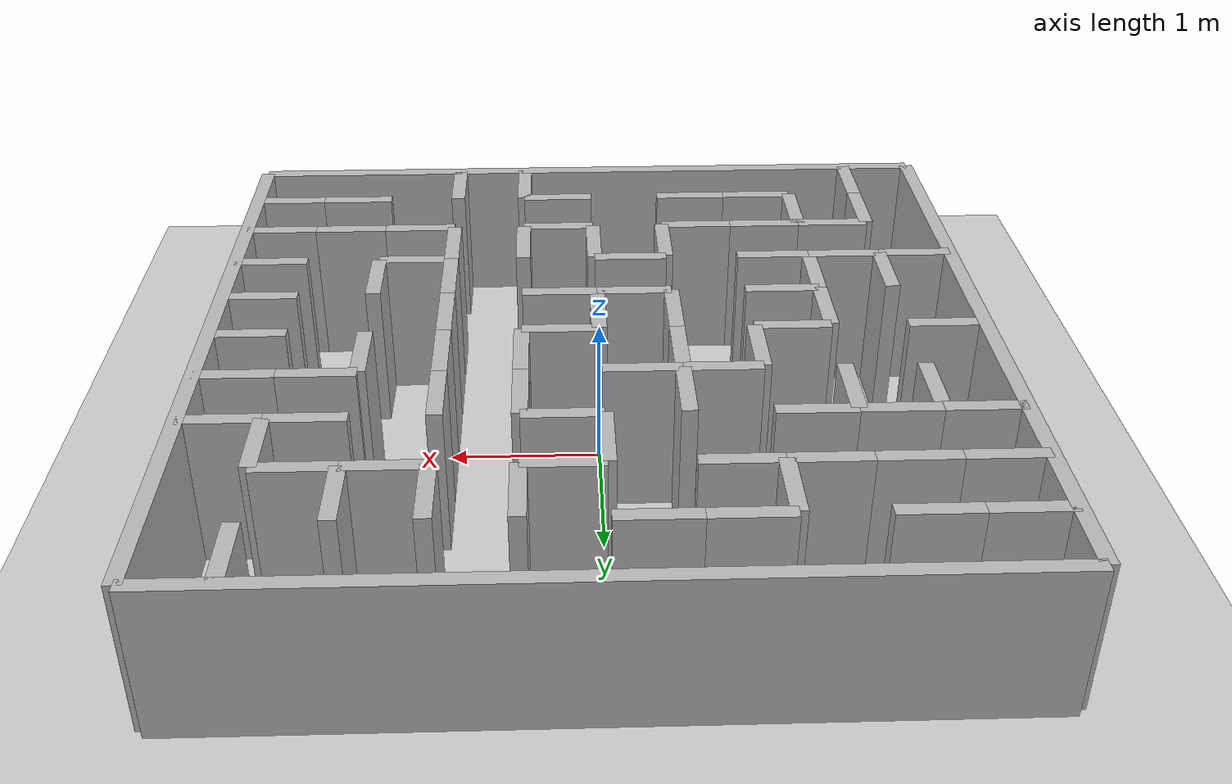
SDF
<?xml version="1.0" ?>
<sdf version="1.6">
  <world name="prim_maze_world">

    <!-- Plugins -->
    <plugin filename="gz-sim-physics-system" name="gz::sim::systems::Physics"/>
    <plugin filename="gz-sim-user-commands-system" name="gz::sim::systems::UserCommands"/>
    <plugin filename="gz-sim-scene-broadcaster-system" name="gz::sim::systems::SceneBroadcaster"/>
    <plugin filename="gz-sim-sensors-system" name="gz::sim::systems::Sensors">
      <render_engine>ogre2</render_engine>
    </plugin>
    <plugin filename="gz-sim-imu-system" name="gz::sim::systems::Imu"/>

    <!-- Basic Environment (Fuel URIs) -->
    <include>
      <uri>https://fuel.gazebosim.org/1.0/OpenRobotics/models/Ground Plane</uri>
    </include>
    <include>
      <uri>https://fuel.gazebosim.org/1.0/OpenRobotics/models/Sun</uri>
    </include>

    <!-- Maze Walls -->

    <model name="wall_-2.00_-2.25">
      <static>true</static>
      <link name="link">
        <collision name="collision">
          <geometry>
            <box>
              <size>0.5 0.1 1.0</size>
            </box>
          </geometry>
        </collision>
        <visual name="visual">
          <geometry>
            <box>
              <size>0.5 0.1 1.0</size>
            </box>
          </geometry>
        </visual>
      </link>
      <pose>-2.000 -2.250 0.5 0 0 1.5708</pose>
    </model>

    <model name="wall_0.50_-2.25">
      <static>true</static>
      <link name="link">
        <collision name="collision">
          <geometry>
            <box>
              <size>0.5 0.1 1.0</size>
            </box>
          </geometry>
        </collision>
        <visual name="visual">
          <geometry>
            <box>
              <size>0.5 0.1 1.0</size>
            </box>
          </geometry>
        </visual>
      </link>
      <pose>0.500 -2.250 0.5 0 0 1.5708</pose>
    </model>

    <model name="wall_1.00_-2.25">
      <static>true</static>
      <link name="link">
        <collision name="collision">
          <geometry>
            <box>
              <size>0.5 0.1 1.0</size>
            </box>
          </geometry>
        </collision>
        <visual name="visual">
          <geometry>
            <box>
              <size>0.5 0.1 1.0</size>
            </box>
          </geometry>
        </visual>
      </link>
      <pose>1.000 -2.250 0.5 0 0 1.5708</pose>
    </model>

    <model name="wall_-2.00_-1.75">
      <static>true</static>
      <link name="link">
        <collision name="collision">
          <geometry>
            <box>
              <size>0.5 0.1 1.0</size>
            </box>
          </geometry>
        </collision>
        <visual name="visual">
          <geometry>
            <box>
              <size>0.5 0.1 1.0</size>
            </box>
          </geometry>
        </visual>
      </link>
      <pose>-2.000 -1.750 0.5 0 0 1.5708</pose>
    </model>

    <model name="wall_-1.50_-1.75">
      <static>true</static>
      <link name="link">
        <collision name="collision">
          <geometry>
            <box>
              <size>0.5 0.1 1.0</size>
            </box>
          </geometry>
        </collision>
        <visual name="visual">
          <geometry>
            <box>
              <size>0.5 0.1 1.0</size>
            </box>
          </geometry>
        </visual>
      </link>
      <pose>-1.500 -1.750 0.5 0 0 1.5708</pose>
    </model>

    <model name="wall_-0.50_-1.25">
      <static>true</static>
      <link name="link">
        <collision name="collision">
          <geometry>
            <box>
              <size>0.5 0.1 1.0</size>
            </box>
          </geometry>
        </collision>
        <visual name="visual">
          <geometry>
            <box>
              <size>0.5 0.1 1.0</size>
            </box>
          </geometry>
        </visual>
      </link>
      <pose>-0.500 -1.250 0.5 0 0 1.5708</pose>
    </model>

    <model name="wall_0.00_-1.25">
      <static>true</static>
      <link name="link">
        <collision name="collision">
          <geometry>
            <box>
              <size>0.5 0.1 1.0</size>
            </box>
          </geometry>
        </collision>
        <visual name="visual">
          <geometry>
            <box>
              <size>0.5 0.1 1.0</size>
            </box>
          </geometry>
        </visual>
      </link>
      <pose>0.000 -1.250 0.5 0 0 1.5708</pose>
    </model>

    <model name="wall_0.50_-1.25">
      <static>true</static>
      <link name="link">
        <collision name="collision">
          <geometry>
            <box>
              <size>0.5 0.1 1.0</size>
            </box>
          </geometry>
        </collision>
        <visual name="visual">
          <geometry>
            <box>
              <size>0.5 0.1 1.0</size>
            </box>
          </geometry>
        </visual>
      </link>
      <pose>0.500 -1.250 0.5 0 0 1.5708</pose>
    </model>

    <model name="wall_1.00_-1.25">
      <static>true</static>
      <link name="link">
        <collision name="collision">
          <geometry>
            <box>
              <size>0.5 0.1 1.0</size>
            </box>
          </geometry>
        </collision>
        <visual name="visual">
          <geometry>
            <box>
              <size>0.5 0.1 1.0</size>
            </box>
          </geometry>
        </visual>
      </link>
      <pose>1.000 -1.250 0.5 0 0 1.5708</pose>
    </model>

    <model name="wall_-2.00_-0.75">
      <static>true</static>
      <link name="link">
        <collision name="collision">
          <geometry>
            <box>
              <size>0.5 0.1 1.0</size>
            </box>
          </geometry>
        </collision>
        <visual name="visual">
          <geometry>
            <box>
              <size>0.5 0.1 1.0</size>
            </box>
          </geometry>
        </visual>
      </link>
      <pose>-2.000 -0.750 0.5 0 0 1.5708</pose>
    </model>

    <model name="wall_-1.50_-0.75">
      <static>true</static>
      <link name="link">
        <collision name="collision">
          <geometry>
            <box>
              <size>0.5 0.1 1.0</size>
            </box>
          </geometry>
        </collision>
        <visual name="visual">
          <geometry>
            <box>
              <size>0.5 0.1 1.0</size>
            </box>
          </geometry>
        </visual>
      </link>
      <pose>-1.500 -0.750 0.5 0 0 1.5708</pose>
    </model>

    <model name="wall_1.00_-0.75">
      <static>true</static>
      <link name="link">
        <collision name="collision">
          <geometry>
            <box>
              <size>0.5 0.1 1.0</size>
            </box>
          </geometry>
        </collision>
        <visual name="visual">
          <geometry>
            <box>
              <size>0.5 0.1 1.0</size>
            </box>
          </geometry>
        </visual>
      </link>
      <pose>1.000 -0.750 0.5 0 0 1.5708</pose>
    </model>

    <model name="wall_1.50_-0.75">
      <static>true</static>
      <link name="link">
        <collision name="collision">
          <geometry>
            <box>
              <size>0.5 0.1 1.0</size>
            </box>
          </geometry>
        </collision>
        <visual name="visual">
          <geometry>
            <box>
              <size>0.5 0.1 1.0</size>
            </box>
          </geometry>
        </visual>
      </link>
      <pose>1.500 -0.750 0.5 0 0 1.5708</pose>
    </model>

    <model name="wall_-1.50_-0.25">
      <static>true</static>
      <link name="link">
        <collision name="collision">
          <geometry>
            <box>
              <size>0.5 0.1 1.0</size>
            </box>
          </geometry>
        </collision>
        <visual name="visual">
          <geometry>
            <box>
              <size>0.5 0.1 1.0</size>
            </box>
          </geometry>
        </visual>
      </link>
      <pose>-1.500 -0.250 0.5 0 0 1.5708</pose>
    </model>

    <model name="wall_-0.50_-0.25">
      <static>true</static>
      <link name="link">
        <collision name="collision">
          <geometry>
            <box>
              <size>0.5 0.1 1.0</size>
            </box>
          </geometry>
        </collision>
        <visual name="visual">
          <geometry>
            <box>
              <size>0.5 0.1 1.0</size>
            </box>
          </geometry>
        </visual>
      </link>
      <pose>-0.500 -0.250 0.5 0 0 1.5708</pose>
    </model>

    <model name="wall_0.00_-0.25">
      <static>true</static>
      <link name="link">
        <collision name="collision">
          <geometry>
            <box>
              <size>0.5 0.1 1.0</size>
            </box>
          </geometry>
        </collision>
        <visual name="visual">
          <geometry>
            <box>
              <size>0.5 0.1 1.0</size>
            </box>
          </geometry>
        </visual>
      </link>
      <pose>0.000 -0.250 0.5 0 0 1.5708</pose>
    </model>

    <model name="wall_1.00_-0.25">
      <static>true</static>
      <link name="link">
        <collision name="collision">
          <geometry>
            <box>
              <size>0.5 0.1 1.0</size>
            </box>
          </geometry>
        </collision>
        <visual name="visual">
          <geometry>
            <box>
              <size>0.5 0.1 1.0</size>
            </box>
          </geometry>
        </visual>
      </link>
      <pose>1.000 -0.250 0.5 0 0 1.5708</pose>
    </model>

    <model name="wall_-1.00_0.25">
      <static>true</static>
      <link name="link">
        <collision name="collision">
          <geometry>
            <box>
              <size>0.5 0.1 1.0</size>
            </box>
          </geometry>
        </collision>
        <visual name="visual">
          <geometry>
            <box>
              <size>0.5 0.1 1.0</size>
            </box>
          </geometry>
        </visual>
      </link>
      <pose>-1.000 0.250 0.5 0 0 1.5708</pose>
    </model>

    <model name="wall_-0.50_0.25">
      <static>true</static>
      <link name="link">
        <collision name="collision">
          <geometry>
            <box>
              <size>0.5 0.1 1.0</size>
            </box>
          </geometry>
        </collision>
        <visual name="visual">
          <geometry>
            <box>
              <size>0.5 0.1 1.0</size>
            </box>
          </geometry>
        </visual>
      </link>
      <pose>-0.500 0.250 0.5 0 0 1.5708</pose>
    </model>

    <model name="wall_0.50_0.25">
      <static>true</static>
      <link name="link">
        <collision name="collision">
          <geometry>
            <box>
              <size>0.5 0.1 1.0</size>
            </box>
          </geometry>
        </collision>
        <visual name="visual">
          <geometry>
            <box>
              <size>0.5 0.1 1.0</size>
            </box>
          </geometry>
        </visual>
      </link>
      <pose>0.500 0.250 0.5 0 0 1.5708</pose>
    </model>

    <model name="wall_1.00_0.25">
      <static>true</static>
      <link name="link">
        <collision name="collision">
          <geometry>
            <box>
              <size>0.5 0.1 1.0</size>
            </box>
          </geometry>
        </collision>
        <visual name="visual">
          <geometry>
            <box>
              <size>0.5 0.1 1.0</size>
            </box>
          </geometry>
        </visual>
      </link>
      <pose>1.000 0.250 0.5 0 0 1.5708</pose>
    </model>

    <model name="wall_1.50_0.25">
      <static>true</static>
      <link name="link">
        <collision name="collision">
          <geometry>
            <box>
              <size>0.5 0.1 1.0</size>
            </box>
          </geometry>
        </collision>
        <visual name="visual">
          <geometry>
            <box>
              <size>0.5 0.1 1.0</size>
            </box>
          </geometry>
        </visual>
      </link>
      <pose>1.500 0.250 0.5 0 0 1.5708</pose>
    </model>

    <model name="wall_-2.00_0.75">
      <static>true</static>
      <link name="link">
        <collision name="collision">
          <geometry>
            <box>
              <size>0.5 0.1 1.0</size>
            </box>
          </geometry>
        </collision>
        <visual name="visual">
          <geometry>
            <box>
              <size>0.5 0.1 1.0</size>
            </box>
          </geometry>
        </visual>
      </link>
      <pose>-2.000 0.750 0.5 0 0 1.5708</pose>
    </model>

    <model name="wall_-1.50_0.75">
      <static>true</static>
      <link name="link">
        <collision name="collision">
          <geometry>
            <box>
              <size>0.5 0.1 1.0</size>
            </box>
          </geometry>
        </collision>
        <visual name="visual">
          <geometry>
            <box>
              <size>0.5 0.1 1.0</size>
            </box>
          </geometry>
        </visual>
      </link>
      <pose>-1.500 0.750 0.5 0 0 1.5708</pose>
    </model>

    <model name="wall_-0.50_0.75">
      <static>true</static>
      <link name="link">
        <collision name="collision">
          <geometry>
            <box>
              <size>0.5 0.1 1.0</size>
            </box>
          </geometry>
        </collision>
        <visual name="visual">
          <geometry>
            <box>
              <size>0.5 0.1 1.0</size>
            </box>
          </geometry>
        </visual>
      </link>
      <pose>-0.500 0.750 0.5 0 0 1.5708</pose>
    </model>

    <model name="wall_0.50_0.75">
      <static>true</static>
      <link name="link">
        <collision name="collision">
          <geometry>
            <box>
              <size>0.5 0.1 1.0</size>
            </box>
          </geometry>
        </collision>
        <visual name="visual">
          <geometry>
            <box>
              <size>0.5 0.1 1.0</size>
            </box>
          </geometry>
        </visual>
      </link>
      <pose>0.500 0.750 0.5 0 0 1.5708</pose>
    </model>

    <model name="wall_1.00_0.75">
      <static>true</static>
      <link name="link">
        <collision name="collision">
          <geometry>
            <box>
              <size>0.5 0.1 1.0</size>
            </box>
          </geometry>
        </collision>
        <visual name="visual">
          <geometry>
            <box>
              <size>0.5 0.1 1.0</size>
            </box>
          </geometry>
        </visual>
      </link>
      <pose>1.000 0.750 0.5 0 0 1.5708</pose>
    </model>

    <model name="wall_0.00_1.25">
      <static>true</static>
      <link name="link">
        <collision name="collision">
          <geometry>
            <box>
              <size>0.5 0.1 1.0</size>
            </box>
          </geometry>
        </collision>
        <visual name="visual">
          <geometry>
            <box>
              <size>0.5 0.1 1.0</size>
            </box>
          </geometry>
        </visual>
      </link>
      <pose>0.000 1.250 0.5 0 0 1.5708</pose>
    </model>

    <model name="wall_2.00_1.25">
      <static>true</static>
      <link name="link">
        <collision name="collision">
          <geometry>
            <box>
              <size>0.5 0.1 1.0</size>
            </box>
          </geometry>
        </collision>
        <visual name="visual">
          <geometry>
            <box>
              <size>0.5 0.1 1.0</size>
            </box>
          </geometry>
        </visual>
      </link>
      <pose>2.000 1.250 0.5 0 0 1.5708</pose>
    </model>

    <model name="wall_-1.00_1.75">
      <static>true</static>
      <link name="link">
        <collision name="collision">
          <geometry>
            <box>
              <size>0.5 0.1 1.0</size>
            </box>
          </geometry>
        </collision>
        <visual name="visual">
          <geometry>
            <box>
              <size>0.5 0.1 1.0</size>
            </box>
          </geometry>
        </visual>
      </link>
      <pose>-1.000 1.750 0.5 0 0 1.5708</pose>
    </model>

    <model name="wall_0.50_1.75">
      <static>true</static>
      <link name="link">
        <collision name="collision">
          <geometry>
            <box>
              <size>0.5 0.1 1.0</size>
            </box>
          </geometry>
        </collision>
        <visual name="visual">
          <geometry>
            <box>
              <size>0.5 0.1 1.0</size>
            </box>
          </geometry>
        </visual>
      </link>
      <pose>0.500 1.750 0.5 0 0 1.5708</pose>
    </model>

    <model name="wall_1.00_1.75">
      <static>true</static>
      <link name="link">
        <collision name="collision">
          <geometry>
            <box>
              <size>0.5 0.1 1.0</size>
            </box>
          </geometry>
        </collision>
        <visual name="visual">
          <geometry>
            <box>
              <size>0.5 0.1 1.0</size>
            </box>
          </geometry>
        </visual>
      </link>
      <pose>1.000 1.750 0.5 0 0 1.5708</pose>
    </model>

    <model name="wall_1.50_1.75">
      <static>true</static>
      <link name="link">
        <collision name="collision">
          <geometry>
            <box>
              <size>0.5 0.1 1.0</size>
            </box>
          </geometry>
        </collision>
        <visual name="visual">
          <geometry>
            <box>
              <size>0.5 0.1 1.0</size>
            </box>
          </geometry>
        </visual>
      </link>
      <pose>1.500 1.750 0.5 0 0 1.5708</pose>
    </model>

    <model name="wall_2.00_2.25">
      <static>true</static>
      <link name="link">
        <collision name="collision">
          <geometry>
            <box>
              <size>0.5 0.1 1.0</size>
            </box>
          </geometry>
        </collision>
        <visual name="visual">
          <geometry>
            <box>
              <size>0.5 0.1 1.0</size>
            </box>
          </geometry>
        </visual>
      </link>
      <pose>2.000 2.250 0.5 0 0 1.5708</pose>
    </model>

    <model name="wall_-1.25_-2.00">
      <static>true</static>
      <link name="link">
        <collision name="collision">
          <geometry>
            <box>
              <size>0.5 0.1 1.0</size>
            </box>
          </geometry>
        </collision>
        <visual name="visual">
          <geometry>
            <box>
              <size>0.5 0.1 1.0</size>
            </box>
          </geometry>
        </visual>
      </link>
      <pose>-1.250 -2.000 0.5 0 0 0</pose>
    </model>

    <model name="wall_-0.75_-2.00">
      <static>true</static>
      <link name="link">
        <collision name="collision">
          <geometry>
            <box>
              <size>0.5 0.1 1.0</size>
            </box>
          </geometry>
        </collision>
        <visual name="visual">
          <geometry>
            <box>
              <size>0.5 0.1 1.0</size>
            </box>
          </geometry>
        </visual>
      </link>
      <pose>-0.750 -2.000 0.5 0 0 0</pose>
    </model>

    <model name="wall_0.25_-2.00">
      <static>true</static>
      <link name="link">
        <collision name="collision">
          <geometry>
            <box>
              <size>0.5 0.1 1.0</size>
            </box>
          </geometry>
        </collision>
        <visual name="visual">
          <geometry>
            <box>
              <size>0.5 0.1 1.0</size>
            </box>
          </geometry>
        </visual>
      </link>
      <pose>0.250 -2.000 0.5 0 0 0</pose>
    </model>

    <model name="wall_1.75_-2.00">
      <static>true</static>
      <link name="link">
        <collision name="collision">
          <geometry>
            <box>
              <size>0.5 0.1 1.0</size>
            </box>
          </geometry>
        </collision>
        <visual name="visual">
          <geometry>
            <box>
              <size>0.5 0.1 1.0</size>
            </box>
          </geometry>
        </visual>
      </link>
      <pose>1.750 -2.000 0.5 0 0 0</pose>
    </model>

    <model name="wall_2.25_-2.00">
      <static>true</static>
      <link name="link">
        <collision name="collision">
          <geometry>
            <box>
              <size>0.5 0.1 1.0</size>
            </box>
          </geometry>
        </collision>
        <visual name="visual">
          <geometry>
            <box>
              <size>0.5 0.1 1.0</size>
            </box>
          </geometry>
        </visual>
      </link>
      <pose>2.250 -2.000 0.5 0 0 0</pose>
    </model>

    <model name="wall_-1.75_-1.50">
      <static>true</static>
      <link name="link">
        <collision name="collision">
          <geometry>
            <box>
              <size>0.5 0.1 1.0</size>
            </box>
          </geometry>
        </collision>
        <visual name="visual">
          <geometry>
            <box>
              <size>0.5 0.1 1.0</size>
            </box>
          </geometry>
        </visual>
      </link>
      <pose>-1.750 -1.500 0.5 0 0 0</pose>
    </model>

    <model name="wall_-1.25_-1.50">
      <static>true</static>
      <link name="link">
        <collision name="collision">
          <geometry>
            <box>
              <size>0.5 0.1 1.0</size>
            </box>
          </geometry>
        </collision>
        <visual name="visual">
          <geometry>
            <box>
              <size>0.5 0.1 1.0</size>
            </box>
          </geometry>
        </visual>
      </link>
      <pose>-1.250 -1.500 0.5 0 0 0</pose>
    </model>

    <model name="wall_-0.75_-1.50">
      <static>true</static>
      <link name="link">
        <collision name="collision">
          <geometry>
            <box>
              <size>0.5 0.1 1.0</size>
            </box>
          </geometry>
        </collision>
        <visual name="visual">
          <geometry>
            <box>
              <size>0.5 0.1 1.0</size>
            </box>
          </geometry>
        </visual>
      </link>
      <pose>-0.750 -1.500 0.5 0 0 0</pose>
    </model>

    <model name="wall_0.25_-1.50">
      <static>true</static>
      <link name="link">
        <collision name="collision">
          <geometry>
            <box>
              <size>0.5 0.1 1.0</size>
            </box>
          </geometry>
        </collision>
        <visual name="visual">
          <geometry>
            <box>
              <size>0.5 0.1 1.0</size>
            </box>
          </geometry>
        </visual>
      </link>
      <pose>0.250 -1.500 0.5 0 0 0</pose>
    </model>

    <model name="wall_1.25_-1.50">
      <static>true</static>
      <link name="link">
        <collision name="collision">
          <geometry>
            <box>
              <size>0.5 0.1 1.0</size>
            </box>
          </geometry>
        </collision>
        <visual name="visual">
          <geometry>
            <box>
              <size>0.5 0.1 1.0</size>
            </box>
          </geometry>
        </visual>
      </link>
      <pose>1.250 -1.500 0.5 0 0 0</pose>
    </model>

    <model name="wall_1.75_-1.50">
      <static>true</static>
      <link name="link">
        <collision name="collision">
          <geometry>
            <box>
              <size>0.5 0.1 1.0</size>
            </box>
          </geometry>
        </collision>
        <visual name="visual">
          <geometry>
            <box>
              <size>0.5 0.1 1.0</size>
            </box>
          </geometry>
        </visual>
      </link>
      <pose>1.750 -1.500 0.5 0 0 0</pose>
    </model>

    <model name="wall_2.25_-1.50">
      <static>true</static>
      <link name="link">
        <collision name="collision">
          <geometry>
            <box>
              <size>0.5 0.1 1.0</size>
            </box>
          </geometry>
        </collision>
        <visual name="visual">
          <geometry>
            <box>
              <size>0.5 0.1 1.0</size>
            </box>
          </geometry>
        </visual>
      </link>
      <pose>2.250 -1.500 0.5 0 0 0</pose>
    </model>

    <model name="wall_-2.25_-1.00">
      <static>true</static>
      <link name="link">
        <collision name="collision">
          <geometry>
            <box>
              <size>0.5 0.1 1.0</size>
            </box>
          </geometry>
        </collision>
        <visual name="visual">
          <geometry>
            <box>
              <size>0.5 0.1 1.0</size>
            </box>
          </geometry>
        </visual>
      </link>
      <pose>-2.250 -1.000 0.5 0 0 0</pose>
    </model>

    <model name="wall_-1.75_-1.00">
      <static>true</static>
      <link name="link">
        <collision name="collision">
          <geometry>
            <box>
              <size>0.5 0.1 1.0</size>
            </box>
          </geometry>
        </collision>
        <visual name="visual">
          <geometry>
            <box>
              <size>0.5 0.1 1.0</size>
            </box>
          </geometry>
        </visual>
      </link>
      <pose>-1.750 -1.000 0.5 0 0 0</pose>
    </model>

    <model name="wall_-1.25_-1.00">
      <static>true</static>
      <link name="link">
        <collision name="collision">
          <geometry>
            <box>
              <size>0.5 0.1 1.0</size>
            </box>
          </geometry>
        </collision>
        <visual name="visual">
          <geometry>
            <box>
              <size>0.5 0.1 1.0</size>
            </box>
          </geometry>
        </visual>
      </link>
      <pose>-1.250 -1.000 0.5 0 0 0</pose>
    </model>

    <model name="wall_-0.25_-1.00">
      <static>true</static>
      <link name="link">
        <collision name="collision">
          <geometry>
            <box>
              <size>0.5 0.1 1.0</size>
            </box>
          </geometry>
        </collision>
        <visual name="visual">
          <geometry>
            <box>
              <size>0.5 0.1 1.0</size>
            </box>
          </geometry>
        </visual>
      </link>
      <pose>-0.250 -1.000 0.5 0 0 0</pose>
    </model>

    <model name="wall_1.25_-1.00">
      <static>true</static>
      <link name="link">
        <collision name="collision">
          <geometry>
            <box>
              <size>0.5 0.1 1.0</size>
            </box>
          </geometry>
        </collision>
        <visual name="visual">
          <geometry>
            <box>
              <size>0.5 0.1 1.0</size>
            </box>
          </geometry>
        </visual>
      </link>
      <pose>1.250 -1.000 0.5 0 0 0</pose>
    </model>

    <model name="wall_2.25_-1.00">
      <static>true</static>
      <link name="link">
        <collision name="collision">
          <geometry>
            <box>
              <size>0.5 0.1 1.0</size>
            </box>
          </geometry>
        </collision>
        <visual name="visual">
          <geometry>
            <box>
              <size>0.5 0.1 1.0</size>
            </box>
          </geometry>
        </visual>
      </link>
      <pose>2.250 -1.000 0.5 0 0 0</pose>
    </model>

    <model name="wall_-1.25_-0.50">
      <static>true</static>
      <link name="link">
        <collision name="collision">
          <geometry>
            <box>
              <size>0.5 0.1 1.0</size>
            </box>
          </geometry>
        </collision>
        <visual name="visual">
          <geometry>
            <box>
              <size>0.5 0.1 1.0</size>
            </box>
          </geometry>
        </visual>
      </link>
      <pose>-1.250 -0.500 0.5 0 0 0</pose>
    </model>

    <model name="wall_-0.25_-0.50">
      <static>true</static>
      <link name="link">
        <collision name="collision">
          <geometry>
            <box>
              <size>0.5 0.1 1.0</size>
            </box>
          </geometry>
        </collision>
        <visual name="visual">
          <geometry>
            <box>
              <size>0.5 0.1 1.0</size>
            </box>
          </geometry>
        </visual>
      </link>
      <pose>-0.250 -0.500 0.5 0 0 0</pose>
    </model>

    <model name="wall_0.25_-0.50">
      <static>true</static>
      <link name="link">
        <collision name="collision">
          <geometry>
            <box>
              <size>0.5 0.1 1.0</size>
            </box>
          </geometry>
        </collision>
        <visual name="visual">
          <geometry>
            <box>
              <size>0.5 0.1 1.0</size>
            </box>
          </geometry>
        </visual>
      </link>
      <pose>0.250 -0.500 0.5 0 0 0</pose>
    </model>

    <model name="wall_2.25_-0.50">
      <static>true</static>
      <link name="link">
        <collision name="collision">
          <geometry>
            <box>
              <size>0.5 0.1 1.0</size>
            </box>
          </geometry>
        </collision>
        <visual name="visual">
          <geometry>
            <box>
              <size>0.5 0.1 1.0</size>
            </box>
          </geometry>
        </visual>
      </link>
      <pose>2.250 -0.500 0.5 0 0 0</pose>
    </model>

    <model name="wall_-2.25_0.00">
      <static>true</static>
      <link name="link">
        <collision name="collision">
          <geometry>
            <box>
              <size>0.5 0.1 1.0</size>
            </box>
          </geometry>
        </collision>
        <visual name="visual">
          <geometry>
            <box>
              <size>0.5 0.1 1.0</size>
            </box>
          </geometry>
        </visual>
      </link>
      <pose>-2.250 0.000 0.5 0 0 0</pose>
    </model>

    <model name="wall_-1.25_0.00">
      <static>true</static>
      <link name="link">
        <collision name="collision">
          <geometry>
            <box>
              <size>0.5 0.1 1.0</size>
            </box>
          </geometry>
        </collision>
        <visual name="visual">
          <geometry>
            <box>
              <size>0.5 0.1 1.0</size>
            </box>
          </geometry>
        </visual>
      </link>
      <pose>-1.250 0.000 0.5 0 0 0</pose>
    </model>

    <model name="wall_0.25_0.00">
      <static>true</static>
      <link name="link">
        <collision name="collision">
          <geometry>
            <box>
              <size>0.5 0.1 1.0</size>
            </box>
          </geometry>
        </collision>
        <visual name="visual">
          <geometry>
            <box>
              <size>0.5 0.1 1.0</size>
            </box>
          </geometry>
        </visual>
      </link>
      <pose>0.250 0.000 0.5 0 0 0</pose>
    </model>

    <model name="wall_2.25_0.00">
      <static>true</static>
      <link name="link">
        <collision name="collision">
          <geometry>
            <box>
              <size>0.5 0.1 1.0</size>
            </box>
          </geometry>
        </collision>
        <visual name="visual">
          <geometry>
            <box>
              <size>0.5 0.1 1.0</size>
            </box>
          </geometry>
        </visual>
      </link>
      <pose>2.250 0.000 0.5 0 0 0</pose>
    </model>

    <model name="wall_-0.75_0.50">
      <static>true</static>
      <link name="link">
        <collision name="collision">
          <geometry>
            <box>
              <size>0.5 0.1 1.0</size>
            </box>
          </geometry>
        </collision>
        <visual name="visual">
          <geometry>
            <box>
              <size>0.5 0.1 1.0</size>
            </box>
          </geometry>
        </visual>
      </link>
      <pose>-0.750 0.500 0.5 0 0 0</pose>
    </model>

    <model name="wall_-0.25_0.50">
      <static>true</static>
      <link name="link">
        <collision name="collision">
          <geometry>
            <box>
              <size>0.5 0.1 1.0</size>
            </box>
          </geometry>
        </collision>
        <visual name="visual">
          <geometry>
            <box>
              <size>0.5 0.1 1.0</size>
            </box>
          </geometry>
        </visual>
      </link>
      <pose>-0.250 0.500 0.5 0 0 0</pose>
    </model>

    <model name="wall_1.75_0.50">
      <static>true</static>
      <link name="link">
        <collision name="collision">
          <geometry>
            <box>
              <size>0.5 0.1 1.0</size>
            </box>
          </geometry>
        </collision>
        <visual name="visual">
          <geometry>
            <box>
              <size>0.5 0.1 1.0</size>
            </box>
          </geometry>
        </visual>
      </link>
      <pose>1.750 0.500 0.5 0 0 0</pose>
    </model>

    <model name="wall_2.25_0.50">
      <static>true</static>
      <link name="link">
        <collision name="collision">
          <geometry>
            <box>
              <size>0.5 0.1 1.0</size>
            </box>
          </geometry>
        </collision>
        <visual name="visual">
          <geometry>
            <box>
              <size>0.5 0.1 1.0</size>
            </box>
          </geometry>
        </visual>
      </link>
      <pose>2.250 0.500 0.5 0 0 0</pose>
    </model>

    <model name="wall_-2.25_1.00">
      <static>true</static>
      <link name="link">
        <collision name="collision">
          <geometry>
            <box>
              <size>0.5 0.1 1.0</size>
            </box>
          </geometry>
        </collision>
        <visual name="visual">
          <geometry>
            <box>
              <size>0.5 0.1 1.0</size>
            </box>
          </geometry>
        </visual>
      </link>
      <pose>-2.250 1.000 0.5 0 0 0</pose>
    </model>

    <model name="wall_-1.75_1.00">
      <static>true</static>
      <link name="link">
        <collision name="collision">
          <geometry>
            <box>
              <size>0.5 0.1 1.0</size>
            </box>
          </geometry>
        </collision>
        <visual name="visual">
          <geometry>
            <box>
              <size>0.5 0.1 1.0</size>
            </box>
          </geometry>
        </visual>
      </link>
      <pose>-1.750 1.000 0.5 0 0 0</pose>
    </model>

    <model name="wall_-1.25_1.00">
      <static>true</static>
      <link name="link">
        <collision name="collision">
          <geometry>
            <box>
              <size>0.5 0.1 1.0</size>
            </box>
          </geometry>
        </collision>
        <visual name="visual">
          <geometry>
            <box>
              <size>0.5 0.1 1.0</size>
            </box>
          </geometry>
        </visual>
      </link>
      <pose>-1.250 1.000 0.5 0 0 0</pose>
    </model>

    <model name="wall_0.25_1.00">
      <static>true</static>
      <link name="link">
        <collision name="collision">
          <geometry>
            <box>
              <size>0.5 0.1 1.0</size>
            </box>
          </geometry>
        </collision>
        <visual name="visual">
          <geometry>
            <box>
              <size>0.5 0.1 1.0</size>
            </box>
          </geometry>
        </visual>
      </link>
      <pose>0.250 1.000 0.5 0 0 0</pose>
    </model>

    <model name="wall_1.75_1.00">
      <static>true</static>
      <link name="link">
        <collision name="collision">
          <geometry>
            <box>
              <size>0.5 0.1 1.0</size>
            </box>
          </geometry>
        </collision>
        <visual name="visual">
          <geometry>
            <box>
              <size>0.5 0.1 1.0</size>
            </box>
          </geometry>
        </visual>
      </link>
      <pose>1.750 1.000 0.5 0 0 0</pose>
    </model>

    <model name="wall_2.25_1.00">
      <static>true</static>
      <link name="link">
        <collision name="collision">
          <geometry>
            <box>
              <size>0.5 0.1 1.0</size>
            </box>
          </geometry>
        </collision>
        <visual name="visual">
          <geometry>
            <box>
              <size>0.5 0.1 1.0</size>
            </box>
          </geometry>
        </visual>
      </link>
      <pose>2.250 1.000 0.5 0 0 0</pose>
    </model>

    <model name="wall_-2.25_1.50">
      <static>true</static>
      <link name="link">
        <collision name="collision">
          <geometry>
            <box>
              <size>0.5 0.1 1.0</size>
            </box>
          </geometry>
        </collision>
        <visual name="visual">
          <geometry>
            <box>
              <size>0.5 0.1 1.0</size>
            </box>
          </geometry>
        </visual>
      </link>
      <pose>-2.250 1.500 0.5 0 0 0</pose>
    </model>

    <model name="wall_-1.75_1.50">
      <static>true</static>
      <link name="link">
        <collision name="collision">
          <geometry>
            <box>
              <size>0.5 0.1 1.0</size>
            </box>
          </geometry>
        </collision>
        <visual name="visual">
          <geometry>
            <box>
              <size>0.5 0.1 1.0</size>
            </box>
          </geometry>
        </visual>
      </link>
      <pose>-1.750 1.500 0.5 0 0 0</pose>
    </model>

    <model name="wall_-1.25_1.50">
      <static>true</static>
      <link name="link">
        <collision name="collision">
          <geometry>
            <box>
              <size>0.5 0.1 1.0</size>
            </box>
          </geometry>
        </collision>
        <visual name="visual">
          <geometry>
            <box>
              <size>0.5 0.1 1.0</size>
            </box>
          </geometry>
        </visual>
      </link>
      <pose>-1.250 1.500 0.5 0 0 0</pose>
    </model>

    <model name="wall_-0.75_1.50">
      <static>true</static>
      <link name="link">
        <collision name="collision">
          <geometry>
            <box>
              <size>0.5 0.1 1.0</size>
            </box>
          </geometry>
        </collision>
        <visual name="visual">
          <geometry>
            <box>
              <size>0.5 0.1 1.0</size>
            </box>
          </geometry>
        </visual>
      </link>
      <pose>-0.750 1.500 0.5 0 0 0</pose>
    </model>

    <model name="wall_0.25_1.50">
      <static>true</static>
      <link name="link">
        <collision name="collision">
          <geometry>
            <box>
              <size>0.5 0.1 1.0</size>
            </box>
          </geometry>
        </collision>
        <visual name="visual">
          <geometry>
            <box>
              <size>0.5 0.1 1.0</size>
            </box>
          </geometry>
        </visual>
      </link>
      <pose>0.250 1.500 0.5 0 0 0</pose>
    </model>

    <model name="wall_1.25_1.50">
      <static>true</static>
      <link name="link">
        <collision name="collision">
          <geometry>
            <box>
              <size>0.5 0.1 1.0</size>
            </box>
          </geometry>
        </collision>
        <visual name="visual">
          <geometry>
            <box>
              <size>0.5 0.1 1.0</size>
            </box>
          </geometry>
        </visual>
      </link>
      <pose>1.250 1.500 0.5 0 0 0</pose>
    </model>

    <model name="wall_1.75_1.50">
      <static>true</static>
      <link name="link">
        <collision name="collision">
          <geometry>
            <box>
              <size>0.5 0.1 1.0</size>
            </box>
          </geometry>
        </collision>
        <visual name="visual">
          <geometry>
            <box>
              <size>0.5 0.1 1.0</size>
            </box>
          </geometry>
        </visual>
      </link>
      <pose>1.750 1.500 0.5 0 0 0</pose>
    </model>

    <model name="wall_-2.25_2.00">
      <static>true</static>
      <link name="link">
        <collision name="collision">
          <geometry>
            <box>
              <size>0.5 0.1 1.0</size>
            </box>
          </geometry>
        </collision>
        <visual name="visual">
          <geometry>
            <box>
              <size>0.5 0.1 1.0</size>
            </box>
          </geometry>
        </visual>
      </link>
      <pose>-2.250 2.000 0.5 0 0 0</pose>
    </model>

    <model name="wall_-1.75_2.00">
      <static>true</static>
      <link name="link">
        <collision name="collision">
          <geometry>
            <box>
              <size>0.5 0.1 1.0</size>
            </box>
          </geometry>
        </collision>
        <visual name="visual">
          <geometry>
            <box>
              <size>0.5 0.1 1.0</size>
            </box>
          </geometry>
        </visual>
      </link>
      <pose>-1.750 2.000 0.5 0 0 0</pose>
    </model>

    <model name="wall_-0.75_2.00">
      <static>true</static>
      <link name="link">
        <collision name="collision">
          <geometry>
            <box>
              <size>0.5 0.1 1.0</size>
            </box>
          </geometry>
        </collision>
        <visual name="visual">
          <geometry>
            <box>
              <size>0.5 0.1 1.0</size>
            </box>
          </geometry>
        </visual>
      </link>
      <pose>-0.750 2.000 0.5 0 0 0</pose>
    </model>

    <model name="wall_-0.25_2.00">
      <static>true</static>
      <link name="link">
        <collision name="collision">
          <geometry>
            <box>
              <size>0.5 0.1 1.0</size>
            </box>
          </geometry>
        </collision>
        <visual name="visual">
          <geometry>
            <box>
              <size>0.5 0.1 1.0</size>
            </box>
          </geometry>
        </visual>
      </link>
      <pose>-0.250 2.000 0.5 0 0 0</pose>
    </model>

    <model name="wall_0.00_-2.50">
      <static>true</static>
      <link name="link">
        <collision name="collision">
          <geometry>
            <box>
              <size>5.0 0.1 1.0</size>
            </box>
          </geometry>
        </collision>
        <visual name="visual">
          <geometry>
            <box>
              <size>5.0 0.1 1.0</size>
            </box>
          </geometry>
        </visual>
      </link>
      <pose>0.000 -2.500 0.5 0 0 0</pose>
    </model>

    <model name="wall_0.00_2.50">
      <static>true</static>
      <link name="link">
        <collision name="collision">
          <geometry>
            <box>
              <size>5.0 0.1 1.0</size>
            </box>
          </geometry>
        </collision>
        <visual name="visual">
          <geometry>
            <box>
              <size>5.0 0.1 1.0</size>
            </box>
          </geometry>
        </visual>
      </link>
      <pose>0.000 2.500 0.5 0 0 0</pose>
    </model>

    <model name="wall_-2.50_0.00">
      <static>true</static>
      <link name="link">
        <collision name="collision">
          <geometry>
            <box>
              <size>5.0 0.1 1.0</size>
            </box>
          </geometry>
        </collision>
        <visual name="visual">
          <geometry>
            <box>
              <size>5.0 0.1 1.0</size>
            </box>
          </geometry>
        </visual>
      </link>
      <pose>-2.500 0.000 0.5 0 0 1.5708</pose>
    </model>

    <model name="wall_2.50_0.00">
      <static>true</static>
      <link name="link">
        <collision name="collision">
          <geometry>
            <box>
              <size>5.0 0.1 1.0</size>
            </box>
          </geometry>
        </collision>
        <visual name="visual">
          <geometry>
            <box>
              <size>5.0 0.1 1.0</size>
            </box>
          </geometry>
        </visual>
      </link>
      <pose>2.500 0.000 0.5 0 0 1.5708</pose>
    </model>

    <!-- Camera Configuration -->
    <gui fullscreen="0">
      <camera name="user_camera">
        <pose>0 0 10 0 1.5708 0</pose>
        <view_controller>orbit</view_controller>
      </camera>
    </gui>

    <!-- Physics Configuration -->
    <physics type="ode">
      <real_time_update_rate>1000.0</real_time_update_rate>
      <max_step_size>0.001</max_step_size>
      <real_time_factor>1</real_time_factor>
    </physics>

  </world>
</sdf>
